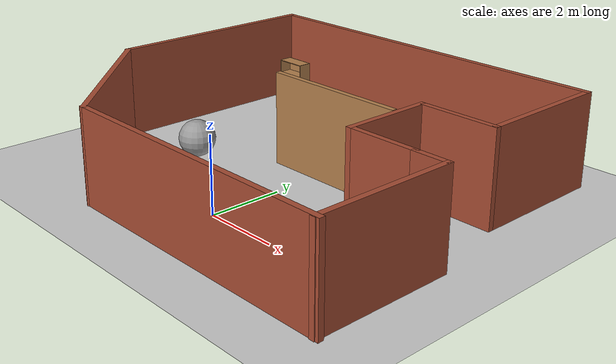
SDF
<sdf version="1.7">
 <world name="default">
  <model name="ground_plane">
   <static>1</static>
   <link name="link">
    <collision name="collision">
     <geometry><plane><normal>0 0 1</normal><size>100 100</size></plane></geometry>
     <surface>
      <contact><collide_bitmask>65535</collide_bitmask></contact>
      <friction><ode><mu>100</mu><mu2>50</mu2></ode></friction>
     </surface>
    </collision>
    <visual name="visual">
     <cast_shadows>0</cast_shadows>
     <geometry><plane><normal>0 0 1</normal><size>100 100</size></plane></geometry>
     <material>
      <script><uri>file://media/materials/scripts/gazebo.material</uri><name>Gazebo/Grey</name></script>
     </material>
    </visual>
   </link>
  </model>
  <model name="rmp01_bot">
   <link name="base_link">
    <inertial>
     <pose>-0.010386 2.4e-05 0.120697 0 -0 0</pose>
     <mass>14.3585</mass>
     <inertia>
      <ixx>0.149241</ixx>
      <ixy>-1.58634e-05</ixy>
      <ixz>0.0173055</ixz>
      <iyy>0.348864</iyy>
      <iyz>-2.11879e-05</iyz>
      <izz>0.391853</izz>
     </inertia>
    </inertial>
    <collision name="base_link_collision">
     <geometry>
      <mesh>
       <scale>0.001 0.001 0.001</scale>
       <uri>/home/startech/catkin_ws/src/rmp01_bot_description/meshes/base_link.stl</uri>
      </mesh>
     </geometry>
     <surface><friction><ode><mu>0.2</mu><mu2>0.2</mu2></ode></friction></surface>
    </collision>
    <collision name="base_link_fixed_joint_lump__lidar_1_collision_1">
     <geometry>
      <mesh>
       <scale>0.001 0.001 0.001</scale>
       <uri>/home/startech/catkin_ws/src/rmp01_bot_description/meshes/lidar_1.stl</uri>
      </mesh>
     </geometry>
     <surface><friction><ode><mu>0.2</mu><mu2>0.2</mu2></ode></friction></surface>
    </collision>
    <visual name="base_link_visual">
     <geometry>
      <mesh>
       <scale>0.001 0.001 0.001</scale>
       <uri>/home/startech/catkin_ws/src/rmp01_bot_description/meshes/base_link.stl</uri>
      </mesh>
     </geometry>
     <material>
      <script><name>Gazebo/Silver</name><uri>file://media/materials/scripts/gazebo.material</uri></script>
     </material>
    </visual>
    <visual name="base_link_fixed_joint_lump__lidar_1_visual_1">
     <geometry>
      <mesh>
       <scale>0.001 0.001 0.001</scale>
       <uri>/home/startech/catkin_ws/src/rmp01_bot_description/meshes/lidar_1.stl</uri>
      </mesh>
     </geometry>
     <material>
      <script><name>Gazebo/Silver</name><uri>file://media/materials/scripts/gazebo.material</uri></script>
     </material>
    </visual>
    <sensor name="camera1" type="camera">
     <update_rate>30</update_rate>
     <camera name="head">
      <horizontal_fov>1.39626</horizontal_fov>
      <image><width>800</width><height>800</height><format>R8G8B8</format></image>
      <clip><near>0.02</near><far>300</far></clip>
      <noise><type>gaussian</type><mean>0</mean><stddev>0.007</stddev></noise>
     </camera>
     <plugin name="camera_controller" filename="libgazebo_ros_camera.so">
      <alwaysOn>1</alwaysOn>
      <updateRate>0.0</updateRate>
      <cameraName>rrbot/camera1</cameraName>
      <imageTopicName>image_raw</imageTopicName>
      <cameraInfoTopicName>camera_info</cameraInfoTopicName>
      <frameName>camera_link</frameName>
      <hackBaseline>0.07</hackBaseline>
      <distortionK1>0.0</distortionK1>
      <distortionK2>0.0</distortionK2>
      <distortionK3>0.0</distortionK3>
      <distortionT1>0.0</distortionT1>
      <distortionT2>0.0</distortionT2>
      <robotNamespace>/</robotNamespace>
     </plugin>
     <pose>0.1 0 0.23 0 -0 0</pose>
    </sensor>
    <self_collide>1</self_collide>
    <sensor name="head_hokuyo_sensor" type="ray">
     <visualize>0</visualize>
     <update_rate>40</update_rate>
     <ray>
      <scan>
       <horizontal>
        <samples>720</samples>
        <resolution>1</resolution>
        <min_angle>-3.14</min_angle>
        <max_angle>3.14</max_angle>
       </horizontal>
       <vertical><samples>1</samples><min_angle>0</min_angle><max_angle>0</max_angle></vertical>
      </scan>
      <range><min>0.1</min><max>30</max><resolution>0.01</resolution></range>
      <noise><type>gaussian</type><mean>0</mean><stddev>0.01</stddev></noise>
     </ray>
     <plugin name="gazebo_ros_head_hokuyo_controller" filename="libgazebo_ros_laser.so">
      <topicName>/scan</topicName>
      <frameName>lidar_1</frameName>
      <robotNamespace>/</robotNamespace>
     </plugin>
     <pose>-0.1 0 0.23 0 -0 0</pose>
    </sensor>
   </link>
   <joint name="back_left_wheel_joint" type="revolute">
    <pose relative_to="base_link">-0.16 0.17 0.08 0 -0 0</pose>
    <parent>base_link</parent>
    <child>back_left_wheel_1</child>
    <axis>
     <xyz>0 1 0</xyz>
     <limit><lower>-1e+16</lower><upper>1e+16</upper></limit>
     <dynamics><spring_reference>0</spring_reference><spring_stiffness>0</spring_stiffness></dynamics>
    </axis>
   </joint>
   <link name="back_left_wheel_1">
    <pose relative_to="back_left_wheel_joint">0 0 0 0 -0 0</pose>
    <inertial>
     <pose>-0 0.025 0 0 -0 0</pose>
     <mass>0.897123</mass>
     <inertia>
      <ixx>0.001664</ixx>
      <ixy>0</ixy>
      <ixz>0</ixz>
      <iyy>0.002957</iyy>
      <iyz>0</iyz>
      <izz>0.001664</izz>
     </inertia>
    </inertial>
    <collision name="back_left_wheel_1_collision">
     <pose>0.16 -0.17 -0.08 0 -0 0</pose>
     <geometry>
      <mesh>
       <scale>0.001 0.001 0.001</scale>
       <uri>/home/startech/catkin_ws/src/rmp01_bot_description/meshes/back_left_wheel_1.stl</uri>
      </mesh>
     </geometry>
     <surface><friction><ode><mu>0.2</mu><mu2>0.2</mu2></ode></friction></surface>
    </collision>
    <visual name="back_left_wheel_1_visual">
     <pose>0.16 -0.17 -0.08 0 -0 0</pose>
     <geometry>
      <mesh>
       <scale>0.001 0.001 0.001</scale>
       <uri>/home/startech/catkin_ws/src/rmp01_bot_description/meshes/back_left_wheel_1.stl</uri>
      </mesh>
     </geometry>
     <material>
      <script><name>Gazebo/Silver</name><uri>file://media/materials/scripts/gazebo.material</uri></script>
     </material>
    </visual>
    <self_collide>1</self_collide>
   </link>
   <joint name="back_right_wheel_joint" type="revolute">
    <pose relative_to="base_link">-0.16 -0.17 0.08 0 -0 0</pose>
    <parent>base_link</parent>
    <child>back_right_wheel_1</child>
    <axis>
     <xyz>0 -1 0</xyz>
     <limit><lower>-1e+16</lower><upper>1e+16</upper></limit>
     <dynamics><spring_reference>0</spring_reference><spring_stiffness>0</spring_stiffness></dynamics>
    </axis>
   </joint>
   <link name="back_right_wheel_1">
    <pose relative_to="back_right_wheel_joint">0 0 0 0 -0 0</pose>
    <inertial>
     <pose>-0 -0.025 0 0 -0 0</pose>
     <mass>0.897123</mass>
     <inertia>
      <ixx>0.001664</ixx>
      <ixy>0</ixy>
      <ixz>0</ixz>
      <iyy>0.002957</iyy>
      <iyz>0</iyz>
      <izz>0.001664</izz>
     </inertia>
    </inertial>
    <collision name="back_right_wheel_1_collision">
     <pose>0.16 0.17 -0.08 0 -0 0</pose>
     <geometry>
      <mesh>
       <scale>0.001 0.001 0.001</scale>
       <uri>/home/startech/catkin_ws/src/rmp01_bot_description/meshes/back_right_wheel_1.stl</uri>
      </mesh>
     </geometry>
     <surface><friction><ode><mu>0.2</mu><mu2>0.2</mu2></ode></friction></surface>
    </collision>
    <visual name="back_right_wheel_1_visual">
     <pose>0.16 0.17 -0.08 0 -0 0</pose>
     <geometry>
      <mesh>
       <scale>0.001 0.001 0.001</scale>
       <uri>/home/startech/catkin_ws/src/rmp01_bot_description/meshes/back_right_wheel_1.stl</uri>
      </mesh>
     </geometry>
     <material>
      <script><name>Gazebo/Silver</name><uri>file://media/materials/scripts/gazebo.material</uri></script>
     </material>
    </visual>
    <self_collide>1</self_collide>
   </link>
   <joint name="front_left_wheel_joint" type="revolute">
    <pose relative_to="base_link">0.16 0.17 0.08 0 -0 0</pose>
    <parent>base_link</parent>
    <child>front_left_wheel_1</child>
    <axis>
     <xyz>0 1 0</xyz>
     <limit><lower>-1e+16</lower><upper>1e+16</upper></limit>
     <dynamics><spring_reference>0</spring_reference><spring_stiffness>0</spring_stiffness></dynamics>
    </axis>
   </joint>
   <link name="front_left_wheel_1">
    <pose relative_to="front_left_wheel_joint">0 0 0 0 -0 0</pose>
    <inertial>
     <pose>0 0.025 0 0 -0 0</pose>
     <mass>0.897123</mass>
     <inertia>
      <ixx>0.001664</ixx>
      <ixy>0</ixy>
      <ixz>0</ixz>
      <iyy>0.002957</iyy>
      <iyz>0</iyz>
      <izz>0.001664</izz>
     </inertia>
    </inertial>
    <collision name="front_left_wheel_1_collision">
     <pose>-0.16 -0.17 -0.08 0 -0 0</pose>
     <geometry>
      <mesh>
       <scale>0.001 0.001 0.001</scale>
       <uri>/home/startech/catkin_ws/src/rmp01_bot_description/meshes/front_left_wheel_1.stl</uri>
      </mesh>
     </geometry>
     <surface><friction><ode><mu>0.2</mu><mu2>0.2</mu2></ode></friction></surface>
    </collision>
    <visual name="front_left_wheel_1_visual">
     <pose>-0.16 -0.17 -0.08 0 -0 0</pose>
     <geometry>
      <mesh>
       <scale>0.001 0.001 0.001</scale>
       <uri>/home/startech/catkin_ws/src/rmp01_bot_description/meshes/front_left_wheel_1.stl</uri>
      </mesh>
     </geometry>
     <material>
      <script><name>Gazebo/Silver</name><uri>file://media/materials/scripts/gazebo.material</uri></script>
     </material>
    </visual>
    <self_collide>1</self_collide>
   </link>
   <joint name="front_right_wheel_joint" type="revolute">
    <pose relative_to="base_link">0.16 -0.17 0.08 0 -0 0</pose>
    <parent>base_link</parent>
    <child>front_right_wheel_1</child>
    <axis>
     <xyz>0 -1 0</xyz>
     <limit><lower>-1e+16</lower><upper>1e+16</upper></limit>
     <dynamics><spring_reference>0</spring_reference><spring_stiffness>0</spring_stiffness></dynamics>
    </axis>
   </joint>
   <link name="front_right_wheel_1">
    <pose relative_to="front_right_wheel_joint">0 0 0 0 -0 0</pose>
    <inertial>
     <pose>0 -0.025 0 0 -0 0</pose>
     <mass>0.897123</mass>
     <inertia>
      <ixx>0.001664</ixx>
      <ixy>0</ixy>
      <ixz>0</ixz>
      <iyy>0.002957</iyy>
      <iyz>0</iyz>
      <izz>0.001664</izz>
     </inertia>
    </inertial>
    <collision name="front_right_wheel_1_collision">
     <pose>-0.16 0.17 -0.08 0 -0 0</pose>
     <geometry>
      <mesh>
       <scale>0.001 0.001 0.001</scale>
       <uri>/home/startech/catkin_ws/src/rmp01_bot_description/meshes/front_right_wheel_1.stl</uri>
      </mesh>
     </geometry>
     <surface><friction><ode><mu>0.2</mu><mu2>0.2</mu2></ode></friction></surface>
    </collision>
    <visual name="front_right_wheel_1_visual">
     <pose>-0.16 0.17 -0.08 0 -0 0</pose>
     <geometry>
      <mesh>
       <scale>0.001 0.001 0.001</scale>
       <uri>/home/startech/catkin_ws/src/rmp01_bot_description/meshes/front_right_wheel_1.stl</uri>
      </mesh>
     </geometry>
     <material>
      <script><name>Gazebo/Silver</name><uri>file://media/materials/scripts/gazebo.material</uri></script>
     </material>
    </visual>
    <self_collide>1</self_collide>
   </link>
   <plugin name="control" filename="libgazebo_ros_control.so"><robotNamespace>/</robotNamespace></plugin>
   <static>0</static>
   <plugin name="skid_steer_drive_controller" filename="libgazebo_ros_skid_steer_drive.so">
    <updateRate>100.0</updateRate>
    <robotNamespace>/</robotNamespace>
    <leftFrontJoint>front_left_wheel_joint</leftFrontJoint>
    <rightFrontJoint>front_right_wheel_joint</rightFrontJoint>
    <leftRearJoint>back_left_wheel_joint</leftRearJoint>
    <rightRearJoint>back_right_wheel_joint</rightRearJoint>
    <wheelSeparation>0.4</wheelSeparation>
    <wheelDiameter>0.215</wheelDiameter>
    <robotBaseFrame>base_link</robotBaseFrame>
    <torque>20</torque>
    <topicName>cmd_vel</topicName>
    <broadcastTF>1</broadcastTF>
   </plugin>
   <pose>-0.361438 -0.351756 -5.2e-05 6.6e-05 -3.4e-05 0.894222</pose>
  </model>
  <model name="final_new_">
   <pose>-0.195267 2.9392 0 0 -0 0</pose>
   <link name="Wall_0">
    <collision name="Wall_0_Collision">
     <geometry><box><size>8 0.15 2.5</size></box></geometry>
     <pose>0 0 1.25 0 -0 0</pose>
    </collision>
    <visual name="Wall_0_Visual">
     <pose>0 0 1.25 0 -0 0</pose>
     <geometry><box><size>8 0.15 2.5</size></box></geometry>
     <material>
      <script><uri>file://media/materials/scripts/gazebo.material</uri><name>Gazebo/Bricks</name></script>
      <ambient>1 1 1 1</ambient>
     </material>
     <meta><layer>0</layer></meta>
    </visual>
    <pose>1.73027 -4.7492 0 0 -0 0</pose>
   </link>
   <link name="Wall_10">
    <collision name="Wall_10_Collision">
     <geometry><box><size>3.75 0.15 2.5</size></box></geometry>
     <pose>0 0 1.25 0 -0 0</pose>
    </collision>
    <visual name="Wall_10_Visual">
     <pose>0 0 1.25 0 -0 0</pose>
     <geometry><box><size>3.75 0.15 2.5</size></box></geometry>
     <material>
      <script><uri>file://media/materials/scripts/gazebo.material</uri><name>Gazebo/Bricks</name></script>
      <ambient>1 1 1 1</ambient>
     </material>
     <meta><layer>0</layer></meta>
    </visual>
    <pose>5.5758 -2.96973 0 0 -0 -1.5708</pose>
   </link>
   <link name="Wall_12">
    <collision name="Wall_12_Collision">
     <geometry><box><size>4 0.15 2.5</size></box></geometry>
     <pose>0 0 1.25 0 -0 0</pose>
    </collision>
    <visual name="Wall_12_Visual">
     <pose>0 0 1.25 0 -0 0</pose>
     <geometry><box><size>4 0.15 2.5</size></box></geometry>
     <material>
      <script><uri>file://media/materials/scripts/gazebo.material</uri><name>Gazebo/Wood</name></script>
      <ambient>1 1 1 1</ambient>
     </material>
     <meta><layer>0</layer></meta>
    </visual>
    <pose>0.764858 0.363354 0 0 -0 3.14159</pose>
   </link>
   <link name="Wall_2">
    <collision name="Wall_2_Collision">
     <geometry><box><size>5 0.15 2.5</size></box></geometry>
     <pose>0 0 1.25 0 -0 0</pose>
    </collision>
    <visual name="Wall_2_Visual">
     <pose>0 0 1.25 0 -0 0</pose>
     <geometry><box><size>5 0.15 2.5</size></box></geometry>
     <material>
      <script><uri>file://media/materials/scripts/gazebo.material</uri><name>Gazebo/Bricks</name></script>
      <ambient>1 1 1 1</ambient>
     </material>
     <meta><layer>0</layer></meta>
    </visual>
    <pose>-3.90947 -3.03447 0 0 -0 2.35619</pose>
   </link>
   <link name="Wall_3">
    <collision name="Wall_3_Collision">
     <geometry><box><size>6.25 0.15 2.5</size></box></geometry>
     <pose>0 0 1.25 0 -0 0</pose>
    </collision>
    <visual name="Wall_3_Visual">
     <pose>0 0 1.25 0 -0 0</pose>
     <geometry><box><size>6.25 0.15 2.5</size></box></geometry>
     <material>
      <script><uri>file://media/materials/scripts/gazebo.material</uri><name>Gazebo/Bricks</name></script>
      <ambient>1 1 1 1</ambient>
     </material>
     <meta><layer>0</layer></meta>
    </visual>
    <pose>-5.6242 1.73027 0 0 -0 1.5708</pose>
   </link>
   <link name="Wall_4">
    <collision name="Wall_4_Collision">
     <geometry><box><size>10.75 0.15 2.5</size></box></geometry>
     <pose>0 0 1.25 0 -0 0</pose>
    </collision>
    <visual name="Wall_4_Visual">
     <pose>0 0 1.25 0 -0 0</pose>
     <geometry><box><size>10.75 0.15 2.5</size></box></geometry>
     <material>
      <script><uri>file://media/materials/scripts/gazebo.material</uri><name>Gazebo/Bricks</name></script>
      <ambient>1 1 1 1</ambient>
     </material>
     <meta><layer>0</layer></meta>
    </visual>
    <pose>-0.3242 4.78027 0 0 -0 0</pose>
   </link>
   <link name="Wall_5">
    <collision name="Wall_5_Collision">
     <geometry><box><size>3.75 0.15 2.5</size></box></geometry>
     <pose>0 0 1.25 0 -0 0</pose>
    </collision>
    <visual name="Wall_5_Visual">
     <pose>0 0 1.25 0 -0 0</pose>
     <geometry><box><size>3.75 0.15 2.5</size></box></geometry>
     <material>
      <script><uri>file://media/materials/scripts/gazebo.material</uri><name>Gazebo/Bricks</name></script>
      <ambient>1 1 1 1</ambient>
     </material>
     <meta><layer>0</layer></meta>
    </visual>
    <pose>4.9758 2.98027 0 0 -0 -1.5708</pose>
   </link>
   <link name="Wall_6">
    <collision name="Wall_6_Collision">
     <geometry><box><size>2.25 0.15 2.5</size></box></geometry>
     <pose>0 0 1.25 0 -0 0</pose>
    </collision>
    <visual name="Wall_6_Visual">
     <pose>0 0 1.25 0 -0 0</pose>
     <geometry><box><size>2.25 0.15 2.5</size></box></geometry>
     <material>
      <script><uri>file://media/materials/scripts/gazebo.material</uri><name>Gazebo/Bricks</name></script>
      <ambient>1 1 1 1</ambient>
     </material>
     <meta><layer>0</layer></meta>
    </visual>
    <pose>3.9258 1.18027 0 0 -0 3.14159</pose>
   </link>
   <link name="Wall_7">
    <collision name="Wall_7_Collision">
     <geometry><box><size>2.5 0.15 2.5</size></box></geometry>
     <pose>0 0 1.25 0 -0 0</pose>
    </collision>
    <visual name="Wall_7_Visual">
     <pose>0 0 1.25 0 -0 0</pose>
     <geometry><box><size>2.5 0.15 2.5</size></box></geometry>
     <material>
      <script><uri>file://media/materials/scripts/gazebo.material</uri><name>Gazebo/Bricks</name></script>
      <ambient>1 1 1 1</ambient>
     </material>
     <meta><layer>0</layer></meta>
    </visual>
    <pose>2.8758 0.005267 0 0 -0 -1.5708</pose>
   </link>
   <link name="Wall_8">
    <collision name="Wall_8_Collision">
     <geometry><box><size>2 0.15 2.5</size></box></geometry>
     <pose>0 0 1.25 0 -0 0</pose>
    </collision>
    <visual name="Wall_8_Visual">
     <pose>0 0 1.25 0 -0 0</pose>
     <geometry><box><size>2 0.15 2.5</size></box></geometry>
     <material>
      <script><uri>file://media/materials/scripts/gazebo.material</uri><name>Gazebo/Bricks</name></script>
      <ambient>1 1 1 1</ambient>
     </material>
     <meta><layer>0</layer></meta>
    </visual>
    <pose>3.8008 -1.16973 0 0 -0 0</pose>
   </link>
   <link name="Wall_9">
    <collision name="Wall_9_Collision">
     <geometry><box><size>1 0.15 2.5</size></box></geometry>
     <pose>0 0 1.25 0 -0 0</pose>
    </collision>
    <visual name="Wall_9_Visual">
     <pose>0 0 1.25 0 -0 0</pose>
     <geometry><box><size>1 0.15 2.5</size></box></geometry>
     <material>
      <script><uri>file://media/materials/scripts/gazebo.material</uri><name>Gazebo/Bricks</name></script>
      <ambient>1 1 1 1</ambient>
     </material>
     <meta><layer>0</layer></meta>
    </visual>
    <pose>5.1508 -1.16973 0 0 -0 0</pose>
   </link>
   <static>1</static>
  </model>
  <model name="unit_sphere">
   <pose>-3.26633 2.00633 0.5 0 -0 0</pose>
   <link name="link">
    <inertial>
     <mass>1</mass>
     <inertia><ixx>0.1</ixx><ixy>0</ixy><ixz>0</ixz><iyy>0.1</iyy><iyz>0</iyz><izz>0.1</izz></inertia>
    </inertial>
    <collision name="collision"><geometry><sphere><radius>0.5</radius></sphere></geometry></collision>
    <visual name="visual">
     <geometry><sphere><radius>0.5</radius></sphere></geometry>
     <material>
      <script><name>Gazebo/Grey</name><uri>file://media/materials/scripts/gazebo.material</uri></script>
     </material>
    </visual>
   </link>
  </model>
  <model name="unit_cylinder">
   <pose>-0.56773 5.94518 0.499993 -3e-06 -3e-06 0</pose>
   <link name="link">
    <inertial>
     <mass>1</mass>
     <inertia><ixx>0.145833</ixx><ixy>0</ixy><ixz>0</ixz><iyy>0.145833</iyy><iyz>0</iyz><izz>0.125</izz></inertia>
    </inertial>
    <collision name="collision">
     <geometry><cylinder><radius>0.5</radius><length>1</length></cylinder></geometry>
    </collision>
    <visual name="visual">
     <geometry><cylinder><radius>0.5</radius><length>1</length></cylinder></geometry>
     <material>
      <script><name>Gazebo/Grey</name><uri>file://media/materials/scripts/gazebo.material</uri></script>
     </material>
    </visual>
   </link>
  </model>
  <model name="unit_box">
   <pose>2.81576 -0.136837 0.499995 0 1e-05 0</pose>
   <link name="link">
    <inertial>
     <mass>1</mass>
     <inertia>
      <ixx>0.166667</ixx>
      <ixy>0</ixy>
      <ixz>0</ixz>
      <iyy>0.166667</iyy>
      <iyz>0</iyz>
      <izz>0.166667</izz>
     </inertia>
    </inertial>
    <collision name="collision"><geometry><box><size>1 1 1</size></box></geometry></collision>
    <visual name="visual">
     <geometry><box><size>1 1 1</size></box></geometry>
     <material>
      <script><name>Gazebo/Grey</name><uri>file://media/materials/scripts/gazebo.material</uri></script>
     </material>
    </visual>
   </link>
  </model>
  <model name="beer">
   <link name="link">
    <pose>0 0 0.115 0 -0 0</pose>
    <inertial>
     <mass>0.39</mass>
     <inertia><ixx>0.00058</ixx><ixy>0</ixy><ixz>0</ixz><iyy>0.00058</iyy><iyz>0</iyz><izz>0.00019</izz></inertia>
    </inertial>
    <collision name="collision">
     <geometry><cylinder><radius>0.055</radius><length>0.23</length></cylinder></geometry>
    </collision>
    <visual name="visual">
     <geometry><cylinder><radius>0.055</radius><length>0.23</length></cylinder></geometry>
     <material>
      <script>
       <uri>model://beer/materials/scripts</uri>
       <uri>model://beer/materials/textures</uri>
       <name>Beer/Diffuse</name>
      </script>
     </material>
    </visual>
   </link>
   <pose>-1.36043 1.4303 -7e-06 -1e-06 -0 -2e-06</pose>
  </model>
  <model name="bookshelf">
   <static>1</static>
   <link name="link">
    <inertial><mass>1</mass></inertial>
    <collision name="back">
     <pose>0 0.005 0.6 0 -0 0</pose>
     <geometry><box><size>0.9 0.01 1.2</size></box></geometry>
    </collision>
    <visual name="visual1">
     <pose>0 0.005 0.6 0 -0 0</pose>
     <geometry><box><size>0.9 0.01 1.2</size></box></geometry>
     <material>
      <script><uri>file://media/materials/scripts/gazebo.material</uri><name>Gazebo/Wood</name></script>
     </material>
    </visual>
    <collision name="left_side">
     <pose>0.45 -0.195 0.6 0 -0 0</pose>
     <geometry><box><size>0.02 0.4 1.2</size></box></geometry>
    </collision>
    <visual name="visual2">
     <pose>0.45 -0.195 0.6 0 -0 0</pose>
     <geometry><box><size>0.02 0.4 1.2</size></box></geometry>
     <material>
      <script><uri>file://media/materials/scripts/gazebo.material</uri><name>Gazebo/Wood</name></script>
     </material>
    </visual>
    <collision name="right_side">
     <pose>-0.45 -0.195 0.6 0 -0 0</pose>
     <geometry><box><size>0.02 0.4 1.2</size></box></geometry>
    </collision>
    <visual name="visual3">
     <pose>-0.45 -0.195 0.6 0 -0 0</pose>
     <geometry><box><size>0.02 0.4 1.2</size></box></geometry>
     <material>
      <script><uri>file://media/materials/scripts/gazebo.material</uri><name>Gazebo/Wood</name></script>
     </material>
    </visual>
    <collision name="bottom">
     <pose>0 -0.195 0.03 0 -0 0</pose>
     <geometry><box><size>0.88 0.4 0.06</size></box></geometry>
    </collision>
    <visual name="visual4">
     <pose>0 -0.195 0.03 0 -0 0</pose>
     <geometry><box><size>0.88 0.4 0.06</size></box></geometry>
     <material>
      <script><uri>file://media/materials/scripts/gazebo.material</uri><name>Gazebo/Wood</name></script>
     </material>
    </visual>
    <collision name="top">
     <pose>0 -0.195 1.19 0 -0 0</pose>
     <geometry><box><size>0.88 0.4 0.02</size></box></geometry>
    </collision>
    <visual name="visual5">
     <pose>0 -0.195 1.19 0 -0 0</pose>
     <geometry><box><size>0.88 0.4 0.02</size></box></geometry>
     <material>
      <script><uri>file://media/materials/scripts/gazebo.material</uri><name>Gazebo/Wood</name></script>
     </material>
    </visual>
    <collision name="low_shelf">
     <pose>0 -0.195 0.43 0 -0 0</pose>
     <geometry><box><size>0.88 0.4 0.02</size></box></geometry>
    </collision>
    <visual name="visual6">
     <pose>0 -0.195 0.43 0 -0 0</pose>
     <geometry><box><size>0.88 0.4 0.02</size></box></geometry>
     <material>
      <script><uri>file://media/materials/scripts/gazebo.material</uri><name>Gazebo/Wood</name></script>
     </material>
    </visual>
    <collision name="high_shelf">
     <pose>0 -0.195 0.8 0 -0 0</pose>
     <geometry><box><size>0.88 0.4 0.02</size></box></geometry>
    </collision>
    <visual name="visual7">
     <pose>0 -0.195 0.8 0 -0 0</pose>
     <geometry><box><size>0.88 0.4 0.02</size></box></geometry>
     <material>
      <script><uri>file://media/materials/scripts/gazebo.material</uri><name>Gazebo/Wood</name></script>
     </material>
    </visual>
   </link>
   <pose>-5.11744 7.42722 0 0 -0 0</pose>
  </model>
 </world>
</sdf>
